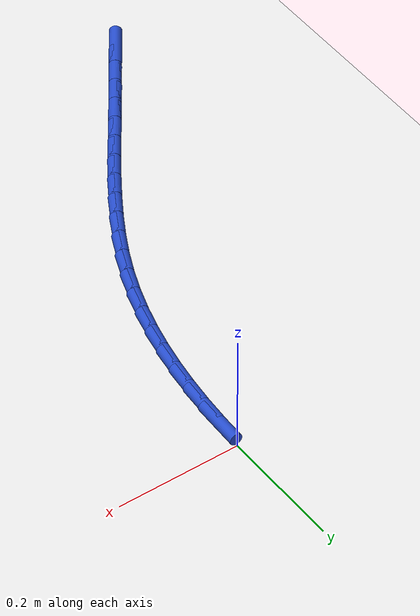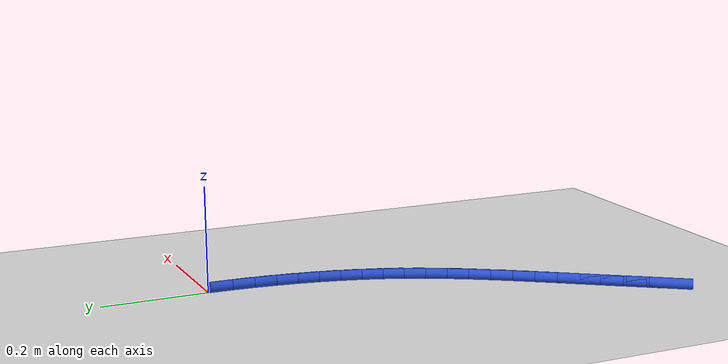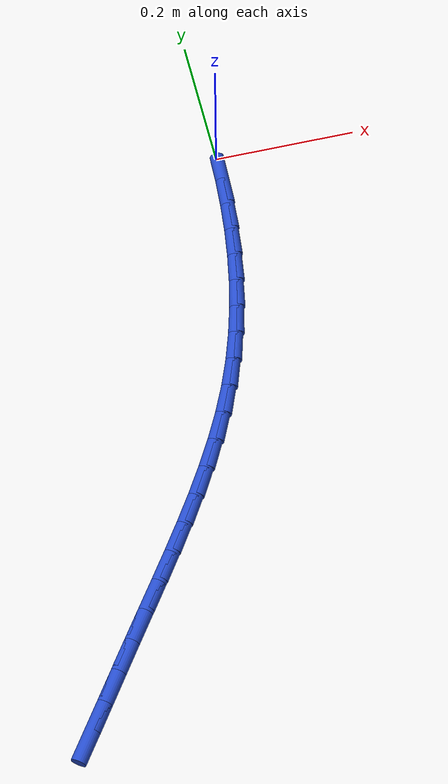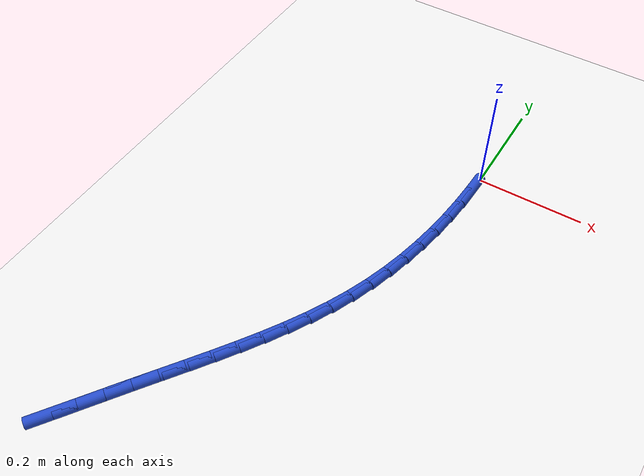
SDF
<sdf version="1.6">
 <world name="default">
  <model name="ground_plane">
   <static>1</static>
   <link name="link">
    <collision name="collision">
     <geometry><plane><normal>0 0 1</normal><size>100 100</size></plane></geometry>
     <surface><friction><ode><mu>100</mu><mu2>50</mu2></ode></friction></surface>
    </collision>
    <visual name="visual">
     <cast_shadows>0</cast_shadows>
     <geometry><plane><normal>0 0 1</normal><size>100 100</size></plane></geometry>
     <material>
      <script><uri>file://media/materials/scripts/gazebo.material</uri><name>Gazebo/WhiteGlow</name></script>
     </material>
    </visual>
   </link>
  </model>
  <model name="line">
   <link name="link_149">
    <pose>-0.3399977157423835 -0.7863606520919814 0.01 0 1.57 0.9575687841281146</pose>
    <collision name="collision">
     <geometry><cylinder><radius>0.01</radius><length>0.08</length></cylinder></geometry>
    </collision>
    <visual name="visual">
     <material>
      <script><name>Gazebo/Blue</name><uri>file://media/materials/scripts/gazebo.material</uri></script>
     </material>
     <geometry><cylinder><radius>0.01</radius><length>0.08</length></cylinder></geometry>
    </visual>
   </link>
   <link name="link_150">
    <pose>-0.3155572487223635 -0.7516309522806819 0.01 0 1.57 0.9608839879398734</pose>
    <collision name="collision">
     <geometry><cylinder><radius>0.01</radius><length>0.08</length></cylinder></geometry>
    </collision>
    <visual name="visual">
     <material>
      <script><name>Gazebo/Blue</name><uri>file://media/materials/scripts/gazebo.material</uri></script>
     </material>
     <geometry><cylinder><radius>0.01</radius><length>0.08</length></cylinder></geometry>
    </visual>
   </link>
   <link name="link_151">
    <pose>-0.2912269650527382 -0.7168131389107252 0.01 0 1.57 0.959770372629635</pose>
    <collision name="collision">
     <geometry><cylinder><radius>0.01</radius><length>0.08</length></cylinder></geometry>
    </collision>
    <visual name="visual">
     <material>
      <script><name>Gazebo/Blue</name><uri>file://media/materials/scripts/gazebo.material</uri></script>
     </material>
     <geometry><cylinder><radius>0.01</radius><length>0.08</length></cylinder></geometry>
    </visual>
   </link>
   <link name="link_152">
    <pose>-0.2668830548721976 -0.6820583217059678 0.01 0 1.57 0.9550223520594056</pose>
    <collision name="collision">
     <geometry><cylinder><radius>0.01</radius><length>0.08</length></cylinder></geometry>
    </collision>
    <visual name="visual">
     <material>
      <script><name>Gazebo/Blue</name><uri>file://media/materials/scripts/gazebo.material</uri></script>
     </material>
     <geometry><cylinder><radius>0.01</radius><length>0.08</length></cylinder></geometry>
    </visual>
   </link>
   <link name="link_153">
    <pose>-0.24242945388959078 -0.6474972861628944 0.01 0 1.57 0.9534918833159548</pose>
    <collision name="collision">
     <geometry><cylinder><radius>0.01</radius><length>0.08</length></cylinder></geometry>
    </collision>
    <visual name="visual">
     <material>
      <script><name>Gazebo/Blue</name><uri>file://media/materials/scripts/gazebo.material</uri></script>
     </material>
     <geometry><cylinder><radius>0.01</radius><length>0.08</length></cylinder></geometry>
    </visual>
   </link>
   <link name="link_154">
    <pose>-0.21800476378338768 -0.613088919904017 0.01 0 1.57 0.9586875523792161</pose>
    <collision name="collision">
     <geometry><cylinder><radius>0.01</radius><length>0.08</length></cylinder></geometry>
    </collision>
    <visual name="visual">
     <material>
      <script><name>Gazebo/Blue</name><uri>file://media/materials/scripts/gazebo.material</uri></script>
     </material>
     <geometry><cylinder><radius>0.01</radius><length>0.08</length></cylinder></geometry>
    </visual>
   </link>
   <link name="link_155">
    <pose>-0.19386558177370664 -0.5787056762777111 0.01 0 1.57 0.9707406184452136</pose>
    <collision name="collision">
     <geometry><cylinder><radius>0.01</radius><length>0.08</length></cylinder></geometry>
    </collision>
    <visual name="visual">
     <material>
      <script><name>Gazebo/Blue</name><uri>file://media/materials/scripts/gazebo.material</uri></script>
     </material>
     <geometry><cylinder><radius>0.01</radius><length>0.08</length></cylinder></geometry>
    </visual>
   </link>
   <link name="link_156">
    <pose>-0.17026939881159064 -0.5442193539552124 0.01 0 1.57 0.9897930510172237</pose>
    <collision name="collision">
     <geometry><cylinder><radius>0.01</radius><length>0.08</length></cylinder></geometry>
    </collision>
    <visual name="visual">
     <material>
      <script><name>Gazebo/Blue</name><uri>file://media/materials/scripts/gazebo.material</uri></script>
     </material>
     <geometry><cylinder><radius>0.01</radius><length>0.08</length></cylinder></geometry>
    </visual>
   </link>
   <link name="link_157">
    <pose>-0.1474737058480828 -0.509501751607757 0.01 0 1.57 1.0160081989159362</pose>
    <collision name="collision">
     <geometry><cylinder><radius>0.01</radius><length>0.08</length></cylinder></geometry>
    </collision>
    <visual name="visual">
     <material>
      <script><name>Gazebo/Blue</name><uri>file://media/materials/scripts/gazebo.material</uri></script>
     </material>
     <geometry><cylinder><radius>0.01</radius><length>0.08</length></cylinder></geometry>
    </visual>
   </link>
   <link name="link_158">
    <pose>-0.12573599383422585 -0.4744246679065807 0.01 0 1.57 1.0495433612053502</pose>
    <collision name="collision">
     <geometry><cylinder><radius>0.01</radius><length>0.08</length></cylinder></geometry>
    </collision>
    <visual name="visual">
     <material>
      <script><name>Gazebo/Blue</name><uri>file://media/materials/scripts/gazebo.material</uri></script>
     </material>
     <geometry><cylinder><radius>0.01</radius><length>0.08</length></cylinder></geometry>
    </visual>
   </link>
   <link name="link_159">
    <pose>-0.1053137537210636 -0.43885990152292065 0.01 0 1.57 1.0905084984598776</pose>
    <collision name="collision">
     <geometry><cylinder><radius>0.01</radius><length>0.08</length></cylinder></geometry>
    </collision>
    <visual name="visual">
     <material>
      <script><name>Gazebo/Blue</name><uri>file://media/materials/scripts/gazebo.material</uri></script>
     </material>
     <geometry><cylinder><radius>0.01</radius><length>0.08</length></cylinder></geometry>
    </visual>
   </link>
   <link name="link_160">
    <pose>-0.08646447645963871 -0.40267925112801245 0.01 0 1.57 1.1389102681417047</pose>
    <collision name="collision">
     <geometry><cylinder><radius>0.01</radius><length>0.08</length></cylinder></geometry>
    </collision>
    <visual name="visual">
     <material>
      <script><name>Gazebo/Blue</name><uri>file://media/materials/scripts/gazebo.material</uri></script>
     </material>
     <geometry><cylinder><radius>0.01</radius><length>0.08</length></cylinder></geometry>
    </visual>
   </link>
   <link name="link_161">
    <pose>-0.0694456530009943 -0.36575451539309217 0.01 0 1.57 1.1934830671412378</pose>
    <collision name="collision">
     <geometry><cylinder><radius>0.01</radius><length>0.08</length></cylinder></geometry>
    </collision>
    <visual name="visual">
     <material>
      <script><name>Gazebo/Blue</name><uri>file://media/materials/scripts/gazebo.material</uri></script>
     </material>
     <geometry><cylinder><radius>0.01</radius><length>0.08</length></cylinder></geometry>
    </visual>
   </link>
   <link name="link_162">
    <pose>-0.05447482795966936 -0.327978086563531 0.01 0 1.57 1.2475752650571381</pose>
    <collision name="collision">
     <geometry><cylinder><radius>0.01</radius><length>0.08</length></cylinder></geometry>
    </collision>
    <visual name="visual">
     <material>
      <script><name>Gazebo/Blue</name><uri>file://media/materials/scripts/gazebo.material</uri></script>
     </material>
     <geometry><cylinder><radius>0.01</radius><length>0.08</length></cylinder></geometry>
    </visual>
   </link>
   <link name="link_163">
    <pose>-0.04153934871955894 -0.2893610306893549 0.01 0 1.57 1.2986845068371218</pose>
    <collision name="collision">
     <geometry><cylinder><radius>0.01</radius><length>0.08</length></cylinder></geometry>
    </collision>
    <visual name="visual">
     <material>
      <script><name>Gazebo/Blue</name><uri>file://media/materials/scripts/gazebo.material</uri></script>
     </material>
     <geometry><cylinder><radius>0.01</radius><length>0.08</length></cylinder></geometry>
    </visual>
   </link>
   <link name="link_164">
    <pose>-0.03054427608600494 -0.24995683510134198 0.01 0 1.57 1.3466687496508996</pose>
    <collision name="collision">
     <geometry><cylinder><radius>0.01</radius><length>0.08</length></cylinder></geometry>
    </collision>
    <visual name="visual">
     <material>
      <script><name>Gazebo/Blue</name><uri>file://media/materials/scripts/gazebo.material</uri></script>
     </material>
     <geometry><cylinder><radius>0.01</radius><length>0.08</length></cylinder></geometry>
    </visual>
   </link>
   <link name="link_165">
    <pose>-0.021394567576464976 -0.2098190403783722 0.01 0 1.57 1.3914655814601384</pose>
    <collision name="collision">
     <geometry><cylinder><radius>0.01</radius><length>0.08</length></cylinder></geometry>
    </collision>
    <visual name="visual">
     <material>
      <script><name>Gazebo/Blue</name><uri>file://media/materials/scripts/gazebo.material</uri></script>
     </material>
     <geometry><cylinder><radius>0.01</radius><length>0.08</length></cylinder></geometry>
    </visual>
   </link>
   <link name="link_166">
    <pose>-0.013995180708396874 -0.16900118709932643 0.01 0 1.57 1.4330756806813418</pose>
    <collision name="collision">
     <geometry><cylinder><radius>0.01</radius><length>0.08</length></cylinder></geometry>
    </collision>
    <visual name="visual">
     <material>
      <script><name>Gazebo/Blue</name><uri>file://media/materials/scripts/gazebo.material</uri></script>
     </material>
     <geometry><cylinder><radius>0.01</radius><length>0.08</length></cylinder></geometry>
    </visual>
   </link>
   <link name="link_167">
    <pose>-0.00825107299925848 -0.1275568158430856 0.01 0 1.57 1.4715486362908539</pose>
    <collision name="collision">
     <geometry><cylinder><radius>0.01</radius><length>0.08</length></cylinder></geometry>
    </collision>
    <visual name="visual">
     <material>
      <script><name>Gazebo/Blue</name><uri>file://media/materials/scripts/gazebo.material</uri></script>
     </material>
     <geometry><cylinder><radius>0.01</radius><length>0.08</length></cylinder></geometry>
    </visual>
   </link>
   <link name="link_168">
    <pose>-0.004067201966507582 -0.08553946718852967 0.01 0 1.57 1.506969594783358</pose>
    <collision name="collision">
     <geometry><cylinder><radius>0.01</radius><length>0.08</length></cylinder></geometry>
    </collision>
    <visual name="visual">
     <material>
      <script><name>Gazebo/Blue</name><uri>file://media/materials/scripts/gazebo.material</uri></script>
     </material>
     <geometry><cylinder><radius>0.01</radius><length>0.08</length></cylinder></geometry>
    </visual>
   </link>
   <link name="link_169">
    <pose>-0.0013485251276021777 -0.04300268171454108 0.01 0 1.57 1.5394475064141981</pose>
    <collision name="collision">
     <geometry><cylinder><radius>0.01</radius><length>0.08</length></cylinder></geometry>
    </collision>
    <visual name="visual">
     <material>
      <script><name>Gazebo/Blue</name><uri>file://media/materials/scripts/gazebo.material</uri></script>
     </material>
     <geometry><cylinder><radius>0.01</radius><length>0.08</length></cylinder></geometry>
    </visual>
   </link>
  </model>
 </world>
</sdf>
